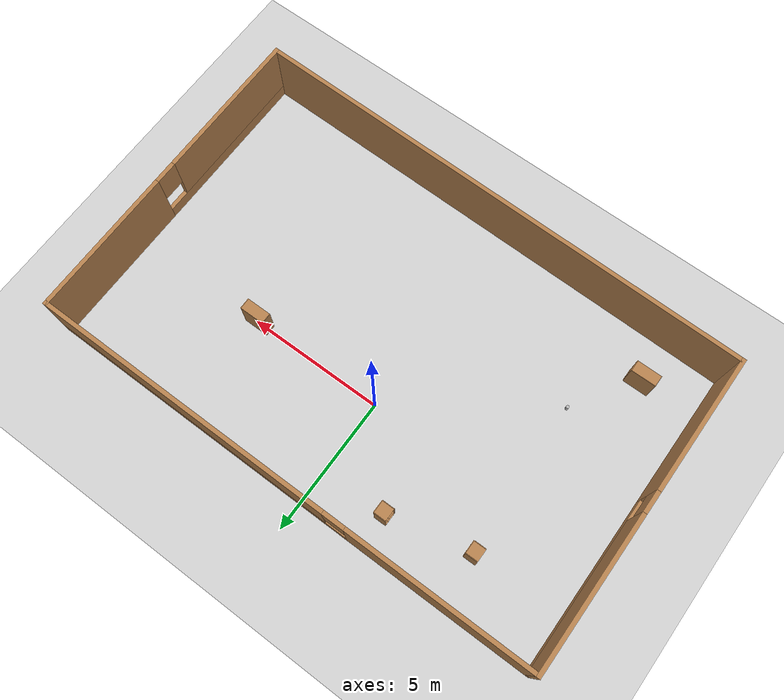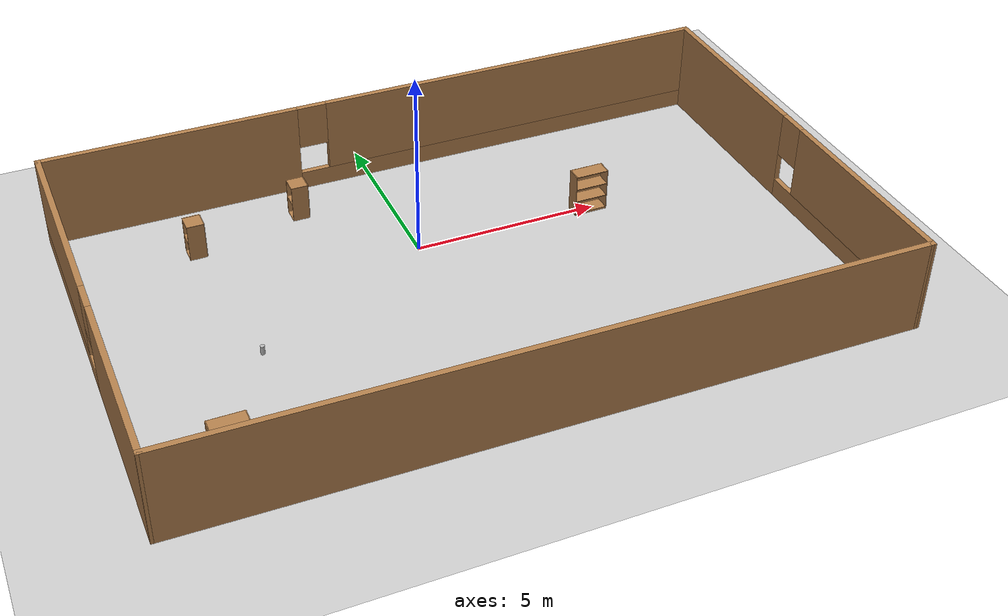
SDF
<sdf version="1.6">
 <world name="default">
  <model name="ground_plane">
   <static>1</static>
   <link name="link">
    <collision name="collision">
     <geometry><plane><normal>0 0 1</normal><size>100 100</size></plane></geometry>
     <surface>
      <contact><collide_bitmask>65535</collide_bitmask></contact>
      <friction><ode><mu>100</mu><mu2>50</mu2></ode></friction>
     </surface>
    </collision>
    <visual name="visual">
     <cast_shadows>0</cast_shadows>
     <geometry><plane><normal>0 0 1</normal><size>100 100</size></plane></geometry>
     <material>
      <script><uri>file://media/materials/scripts/gazebo.material</uri><name>Gazebo/Grey</name></script>
     </material>
    </visual>
   </link>
  </model>
  <model name="my_world">
   <pose>0.595102 -1.84985 0 0 -0 0</pose>
   <link name="Wall_1">
    <pose>-9.3 0.1255 0 0 -0 1.5708</pose>
    <visual name="Wall_1_Visual_0">
     <pose>-3.2222 0 1.25 0 -0 0</pose>
     <geometry><box><size>5.05559 0.15 2.5</size></box></geometry>
     <material>
      <script><uri>file://media/materials/scripts/gazebo.material</uri><name>Gazebo/Wood</name></script>
      <ambient>1 1 1 1</ambient>
     </material>
     <meta><layer>0</layer></meta>
    </visual>
    <collision name="Wall_1_Collision_0">
     <geometry><box><size>5.05559 0.15 2.5</size></box></geometry>
     <pose>-3.2222 0 1.25 0 -0 0</pose>
    </collision>
    <visual name="Wall_1_Visual_1">
     <pose>2.5278 0 0.25 0 -0 0</pose>
     <geometry><box><size>6.44441 0.15 0.5</size></box></geometry>
     <material>
      <script><uri>file://media/materials/scripts/gazebo.material</uri><name>Gazebo/Wood</name></script>
      <ambient>1 1 1 1</ambient>
     </material>
     <meta><layer>0</layer></meta>
    </visual>
    <collision name="Wall_1_Collision_1">
     <geometry><box><size>6.44441 0.15 0.5</size></box></geometry>
     <pose>2.5278 0 0.25 0 -0 0</pose>
    </collision>
    <visual name="Wall_1_Visual_2">
     <pose>2.9278 0 1.5 0 -0 0</pose>
     <geometry><box><size>5.64441 0.15 2</size></box></geometry>
     <material>
      <script><uri>file://media/materials/scripts/gazebo.material</uri><name>Gazebo/Wood</name></script>
      <ambient>1 1 1 1</ambient>
     </material>
     <meta><layer>0</layer></meta>
    </visual>
    <collision name="Wall_1_Collision_2">
     <geometry><box><size>5.64441 0.15 2</size></box></geometry>
     <pose>2.9278 0 1.5 0 -0 0</pose>
    </collision>
    <visual name="Wall_1_Visual_3">
     <pose>-0.294408 0 1.9 0 -0 0</pose>
     <geometry><box><size>0.8 0.15 1.2</size></box></geometry>
     <material>
      <script><uri>file://media/materials/scripts/gazebo.material</uri><name>Gazebo/Wood</name></script>
      <ambient>1 1 1 1</ambient>
     </material>
     <meta><layer>0</layer></meta>
    </visual>
    <collision name="Wall_1_Collision_3">
     <geometry><box><size>0.8 0.15 1.2</size></box></geometry>
     <pose>-0.294408 0 1.9 0 -0 0</pose>
    </collision>
   </link>
   <link name="Wall_2">
    <pose>0 5.8005 0 0 -0 0</pose>
    <visual name="Wall_2_Visual_0">
     <pose>-5.93695 0 1.25 0 -0 0</pose>
     <geometry><box><size>6.87609 0.15 2.5</size></box></geometry>
     <material>
      <script><uri>file://media/materials/scripts/gazebo.material</uri><name>Gazebo/Wood</name></script>
      <ambient>1 1 1 1</ambient>
     </material>
     <meta><layer>0</layer></meta>
    </visual>
    <collision name="Wall_2_Collision_0">
     <geometry><box><size>6.87609 0.15 2.5</size></box></geometry>
     <pose>-5.93695 0 1.25 0 -0 0</pose>
    </collision>
    <visual name="Wall_2_Visual_1">
     <pose>3.43805 0 0.25 0 -0 0</pose>
     <geometry><box><size>11.8739 0.15 0.5</size></box></geometry>
     <material>
      <script><uri>file://media/materials/scripts/gazebo.material</uri><name>Gazebo/Wood</name></script>
      <ambient>1 1 1 1</ambient>
     </material>
     <meta><layer>0</layer></meta>
    </visual>
    <collision name="Wall_2_Collision_1">
     <geometry><box><size>11.8739 0.15 0.5</size></box></geometry>
     <pose>3.43805 0 0.25 0 -0 0</pose>
    </collision>
    <visual name="Wall_2_Visual_2">
     <pose>3.83805 0 1.5 0 -0 0</pose>
     <geometry><box><size>11.0739 0.15 2</size></box></geometry>
     <material>
      <script><uri>file://media/materials/scripts/gazebo.material</uri><name>Gazebo/Wood</name></script>
      <ambient>1 1 1 1</ambient>
     </material>
     <meta><layer>0</layer></meta>
    </visual>
    <collision name="Wall_2_Collision_2">
     <geometry><box><size>11.0739 0.15 2</size></box></geometry>
     <pose>3.83805 0 1.5 0 -0 0</pose>
    </collision>
    <visual name="Wall_2_Visual_3">
     <pose>-2.09891 0 1.9 0 -0 0</pose>
     <geometry><box><size>0.8 0.15 1.2</size></box></geometry>
     <material>
      <script><uri>file://media/materials/scripts/gazebo.material</uri><name>Gazebo/Wood</name></script>
      <ambient>1 1 1 1</ambient>
     </material>
     <meta><layer>0</layer></meta>
    </visual>
    <collision name="Wall_2_Collision_3">
     <geometry><box><size>0.8 0.15 1.2</size></box></geometry>
     <pose>-2.09891 0 1.9 0 -0 0</pose>
    </collision>
   </link>
   <link name="Wall_3">
    <pose>9.3 0.0005 0 0 0 -1.5708</pose>
    <visual name="Wall_3_Visual_0">
     <pose>-3.17416 0 1.25 0 -0 0</pose>
     <geometry><box><size>5.40167 0.15 2.5</size></box></geometry>
     <material>
      <script><uri>file://media/materials/scripts/gazebo.material</uri><name>Gazebo/Wood</name></script>
      <ambient>1 1 1 1</ambient>
     </material>
     <meta><layer>0</layer></meta>
    </visual>
    <collision name="Wall_3_Collision_0">
     <geometry><box><size>5.40167 0.15 2.5</size></box></geometry>
     <pose>-3.17416 0 1.25 0 -0 0</pose>
    </collision>
    <visual name="Wall_3_Visual_1">
     <pose>2.70084 0 0.25 0 -0 0</pose>
     <geometry><box><size>6.34833 0.15 0.5</size></box></geometry>
     <material>
      <script><uri>file://media/materials/scripts/gazebo.material</uri><name>Gazebo/Wood</name></script>
      <ambient>1 1 1 1</ambient>
     </material>
     <meta><layer>0</layer></meta>
    </visual>
    <collision name="Wall_3_Collision_1">
     <geometry><box><size>6.34833 0.15 0.5</size></box></geometry>
     <pose>2.70084 0 0.25 0 -0 0</pose>
    </collision>
    <visual name="Wall_3_Visual_2">
     <pose>3.10084 0 1.5 0 -0 0</pose>
     <geometry><box><size>5.54833 0.15 2</size></box></geometry>
     <material>
      <script><uri>file://media/materials/scripts/gazebo.material</uri><name>Gazebo/Wood</name></script>
      <ambient>1 1 1 1</ambient>
     </material>
     <meta><layer>0</layer></meta>
    </visual>
    <collision name="Wall_3_Collision_2">
     <geometry><box><size>5.54833 0.15 2</size></box></geometry>
     <pose>3.10084 0 1.5 0 -0 0</pose>
    </collision>
    <visual name="Wall_3_Visual_3">
     <pose>-0.073326 0 1.9 0 -0 0</pose>
     <geometry><box><size>0.8 0.15 1.2</size></box></geometry>
     <material>
      <script><uri>file://media/materials/scripts/gazebo.material</uri><name>Gazebo/Wood</name></script>
      <ambient>1 1 1 1</ambient>
     </material>
     <meta><layer>0</layer></meta>
    </visual>
    <collision name="Wall_3_Collision_3">
     <geometry><box><size>0.8 0.15 1.2</size></box></geometry>
     <pose>-0.073326 0 1.9 0 -0 0</pose>
    </collision>
   </link>
   <link name="Wall_4">
    <collision name="Wall_4_Collision">
     <geometry><box><size>18.7517 0.15 2.5</size></box></geometry>
     <pose>0 0 1.25 0 -0 0</pose>
    </collision>
    <visual name="Wall_4_Visual">
     <pose>0 0 1.25 0 -0 0</pose>
     <geometry><box><size>18.7517 0.15 2.5</size></box></geometry>
     <material>
      <script><uri>file://media/materials/scripts/gazebo.material</uri><name>Gazebo/Wood</name></script>
      <ambient>1 1 1 1</ambient>
     </material>
     <meta><layer>0</layer></meta>
    </visual>
    <pose>0 -5.6745 0 0 -0 3.12815</pose>
   </link>
   <static>1</static>
  </model>
  <model name="cabinet">
   <static>1</static>
   <link name="cabinet_bottom_plate">
    <inertial>
     <pose>0 0 -1 0 -0 0</pose>
     <inertia><ixx>2.05</ixx><ixy>0</ixy><ixz>0</ixz><iyy>2.05</iyy><iyz>0</iyz><izz>2.05</izz></inertia>
     <mass>25</mass>
    </inertial>
    <collision name="cabinet_bottom_plate_geom">
     <pose>0 0 0.01 0 -0 0</pose>
     <geometry><box><size>0.45 0.45 0.02</size></box></geometry>
    </collision>
    <visual name="cabinet_bottom_plate_geom_visual">
     <pose>0 0 0.01 0 -0 0</pose>
     <geometry><box><size>0.45 0.45 0.02</size></box></geometry>
     <material>
      <script><uri>file://media/materials/scripts/gazebo.material</uri><name>Gazebo/Wood</name></script>
     </material>
    </visual>
    <collision name="cabinet_bottom_plate_geom_cabinet_back_plate">
     <pose>0.235 0 0.51 0 -0 0</pose>
     <geometry><box><size>0.02 0.45 1.02</size></box></geometry>
    </collision>
    <visual name="cabinet_bottom_plate_geom_cabinet_back_plate_visual">
     <pose>0.235 0 0.51 0 -0 0</pose>
     <geometry><box><size>0.02 0.45 1.02</size></box></geometry>
     <material>
      <script><uri>file://media/materials/scripts/gazebo.material</uri><name>Gazebo/Wood</name></script>
     </material>
    </visual>
    <collision name="cabinet_bottom_plate_geom_cabinet_left_plate">
     <pose>0 0.235 0.51 0 -0 0</pose>
     <geometry><box><size>0.45 0.02 1.02</size></box></geometry>
    </collision>
    <visual name="cabinet_bottom_plate_geom_cabinet_left_plate_visual">
     <pose>0 0.235 0.51 0 -0 0</pose>
     <geometry><box><size>0.45 0.02 1.02</size></box></geometry>
     <material>
      <script><uri>file://media/materials/scripts/gazebo.material</uri><name>Gazebo/Wood</name></script>
     </material>
    </visual>
    <collision name="cabinet_bottom_plate_geom_cabinet_middle_plate">
     <pose>0 0 0.51 0 -0 0</pose>
     <geometry><box><size>0.45 0.45 0.02</size></box></geometry>
    </collision>
    <visual name="cabinet_bottom_plate_geom_cabinet_middle_plate_visual">
     <pose>0 0 0.51 0 -0 0</pose>
     <geometry><box><size>0.45 0.45 0.02</size></box></geometry>
     <material>
      <script><uri>file://media/materials/scripts/gazebo.material</uri><name>Gazebo/Wood</name></script>
     </material>
    </visual>
    <collision name="cabinet_bottom_plate_geom_cabinet_right_plate">
     <pose>0 -0.235 0.51 0 -0 0</pose>
     <geometry><box><size>0.45 0.02 1.02</size></box></geometry>
    </collision>
    <visual name="cabinet_bottom_plate_geom_cabinet_right_plate_visual">
     <pose>0 -0.235 0.51 0 -0 0</pose>
     <geometry><box><size>0.45 0.02 1.02</size></box></geometry>
     <material>
      <script><uri>file://media/materials/scripts/gazebo.material</uri><name>Gazebo/Wood</name></script>
     </material>
    </visual>
    <collision name="cabinet_bottom_plate_geom_cabinet_top_plate">
     <pose>0 0 1.01 0 -0 0</pose>
     <geometry><box><size>0.45 0.45 0.02</size></box></geometry>
    </collision>
    <visual name="cabinet_bottom_plate_geom_cabinet_top_plate_visual">
     <pose>0 0 1.01 0 -0 0</pose>
     <geometry><box><size>0.45 0.45 0.02</size></box></geometry>
     <material>
      <script><uri>file://media/materials/scripts/gazebo.material</uri><name>Gazebo/Wood</name></script>
     </material>
    </visual>
   </link>
   <pose>-5.3729 2.01682 0 0 -0 0</pose>
  </model>
  <model name="bookshelf">
   <static>1</static>
   <link name="link">
    <inertial><mass>1</mass></inertial>
    <collision name="back">
     <pose>0 0.005 0.6 0 -0 0</pose>
     <geometry><box><size>0.9 0.01 1.2</size></box></geometry>
    </collision>
    <visual name="visual1">
     <pose>0 0.005 0.6 0 -0 0</pose>
     <geometry><box><size>0.9 0.01 1.2</size></box></geometry>
     <material>
      <script><uri>file://media/materials/scripts/gazebo.material</uri><name>Gazebo/Wood</name></script>
     </material>
    </visual>
    <collision name="left_side">
     <pose>0.45 -0.195 0.6 0 -0 0</pose>
     <geometry><box><size>0.02 0.4 1.2</size></box></geometry>
    </collision>
    <visual name="visual2">
     <pose>0.45 -0.195 0.6 0 -0 0</pose>
     <geometry><box><size>0.02 0.4 1.2</size></box></geometry>
     <material>
      <script><uri>file://media/materials/scripts/gazebo.material</uri><name>Gazebo/Wood</name></script>
     </material>
    </visual>
    <collision name="right_side">
     <pose>-0.45 -0.195 0.6 0 -0 0</pose>
     <geometry><box><size>0.02 0.4 1.2</size></box></geometry>
    </collision>
    <visual name="visual3">
     <pose>-0.45 -0.195 0.6 0 -0 0</pose>
     <geometry><box><size>0.02 0.4 1.2</size></box></geometry>
     <material>
      <script><uri>file://media/materials/scripts/gazebo.material</uri><name>Gazebo/Wood</name></script>
     </material>
    </visual>
    <collision name="bottom">
     <pose>0 -0.195 0.03 0 -0 0</pose>
     <geometry><box><size>0.88 0.4 0.06</size></box></geometry>
    </collision>
    <visual name="visual4">
     <pose>0 -0.195 0.03 0 -0 0</pose>
     <geometry><box><size>0.88 0.4 0.06</size></box></geometry>
     <material>
      <script><uri>file://media/materials/scripts/gazebo.material</uri><name>Gazebo/Wood</name></script>
     </material>
    </visual>
    <collision name="top">
     <pose>0 -0.195 1.19 0 -0 0</pose>
     <geometry><box><size>0.88 0.4 0.02</size></box></geometry>
    </collision>
    <visual name="visual5">
     <pose>0 -0.195 1.19 0 -0 0</pose>
     <geometry><box><size>0.88 0.4 0.02</size></box></geometry>
     <material>
      <script><uri>file://media/materials/scripts/gazebo.material</uri><name>Gazebo/Wood</name></script>
     </material>
    </visual>
    <collision name="low_shelf">
     <pose>0 -0.195 0.43 0 -0 0</pose>
     <geometry><box><size>0.88 0.4 0.02</size></box></geometry>
    </collision>
    <visual name="visual6">
     <pose>0 -0.195 0.43 0 -0 0</pose>
     <geometry><box><size>0.88 0.4 0.02</size></box></geometry>
     <material>
      <script><uri>file://media/materials/scripts/gazebo.material</uri><name>Gazebo/Wood</name></script>
     </material>
    </visual>
    <collision name="high_shelf">
     <pose>0 -0.195 0.8 0 -0 0</pose>
     <geometry><box><size>0.88 0.4 0.02</size></box></geometry>
    </collision>
    <visual name="visual7">
     <pose>0 -0.195 0.8 0 -0 0</pose>
     <geometry><box><size>0.88 0.4 0.02</size></box></geometry>
     <material>
      <script><uri>file://media/materials/scripts/gazebo.material</uri><name>Gazebo/Wood</name></script>
     </material>
    </visual>
   </link>
   <pose>-6.58321 -5.61236 0 0 -0 0</pose>
  </model>
  <model name="beer">
   <link name="link">
    <pose>0 0 0.115 0 -0 0</pose>
    <inertial>
     <mass>0.39</mass>
     <inertia><ixx>0.00058</ixx><ixy>0</ixy><ixz>0</ixz><iyy>0.00058</iyy><iyz>0</iyz><izz>0.00019</izz></inertia>
    </inertial>
    <collision name="collision">
     <geometry><cylinder><radius>0.055</radius><length>0.23</length></cylinder></geometry>
    </collision>
    <visual name="visual">
     <geometry><cylinder><radius>0.055</radius><length>0.23</length></cylinder></geometry>
     <material>
      <script>
       <uri>model://beer/materials/scripts</uri>
       <uri>model://beer/materials/textures</uri>
       <name>Beer/Diffuse</name>
      </script>
     </material>
    </visual>
   </link>
   <pose>-5.145 -3.43743 0.775001 -1e-06 2.6e-05 0.000204</pose>
  </model>
  <model name="cabinet_0">
   <static>1</static>
   <link name="cabinet_bottom_plate">
    <inertial>
     <pose>0 0 -1 0 -0 0</pose>
     <inertia><ixx>2.05</ixx><ixy>0</ixy><ixz>0</ixz><iyy>2.05</iyy><iyz>0</iyz><izz>2.05</izz></inertia>
     <mass>25</mass>
    </inertial>
    <collision name="cabinet_bottom_plate_geom">
     <pose>0 0 0.01 0 -0 0</pose>
     <geometry><box><size>0.45 0.45 0.02</size></box></geometry>
    </collision>
    <visual name="cabinet_bottom_plate_geom_visual">
     <pose>0 0 0.01 0 -0 0</pose>
     <geometry><box><size>0.45 0.45 0.02</size></box></geometry>
     <material>
      <script><uri>file://media/materials/scripts/gazebo.material</uri><name>Gazebo/Wood</name></script>
     </material>
    </visual>
    <collision name="cabinet_bottom_plate_geom_cabinet_back_plate">
     <pose>0.235 0 0.51 0 -0 0</pose>
     <geometry><box><size>0.02 0.45 1.02</size></box></geometry>
    </collision>
    <visual name="cabinet_bottom_plate_geom_cabinet_back_plate_visual">
     <pose>0.235 0 0.51 0 -0 0</pose>
     <geometry><box><size>0.02 0.45 1.02</size></box></geometry>
     <material>
      <script><uri>file://media/materials/scripts/gazebo.material</uri><name>Gazebo/Wood</name></script>
     </material>
    </visual>
    <collision name="cabinet_bottom_plate_geom_cabinet_left_plate">
     <pose>0 0.235 0.51 0 -0 0</pose>
     <geometry><box><size>0.45 0.02 1.02</size></box></geometry>
    </collision>
    <visual name="cabinet_bottom_plate_geom_cabinet_left_plate_visual">
     <pose>0 0.235 0.51 0 -0 0</pose>
     <geometry><box><size>0.45 0.02 1.02</size></box></geometry>
     <material>
      <script><uri>file://media/materials/scripts/gazebo.material</uri><name>Gazebo/Wood</name></script>
     </material>
    </visual>
    <collision name="cabinet_bottom_plate_geom_cabinet_middle_plate">
     <pose>0 0 0.51 0 -0 0</pose>
     <geometry><box><size>0.45 0.45 0.02</size></box></geometry>
    </collision>
    <visual name="cabinet_bottom_plate_geom_cabinet_middle_plate_visual">
     <pose>0 0 0.51 0 -0 0</pose>
     <geometry><box><size>0.45 0.45 0.02</size></box></geometry>
     <material>
      <script><uri>file://media/materials/scripts/gazebo.material</uri><name>Gazebo/Wood</name></script>
     </material>
    </visual>
    <collision name="cabinet_bottom_plate_geom_cabinet_right_plate">
     <pose>0 -0.235 0.51 0 -0 0</pose>
     <geometry><box><size>0.45 0.02 1.02</size></box></geometry>
    </collision>
    <visual name="cabinet_bottom_plate_geom_cabinet_right_plate_visual">
     <pose>0 -0.235 0.51 0 -0 0</pose>
     <geometry><box><size>0.45 0.02 1.02</size></box></geometry>
     <material>
      <script><uri>file://media/materials/scripts/gazebo.material</uri><name>Gazebo/Wood</name></script>
     </material>
    </visual>
    <collision name="cabinet_bottom_plate_geom_cabinet_top_plate">
     <pose>0 0 1.01 0 -0 0</pose>
     <geometry><box><size>0.45 0.45 0.02</size></box></geometry>
    </collision>
    <visual name="cabinet_bottom_plate_geom_cabinet_top_plate_visual">
     <pose>0 0 1.01 0 -0 0</pose>
     <geometry><box><size>0.45 0.45 0.02</size></box></geometry>
     <material>
      <script><uri>file://media/materials/scripts/gazebo.material</uri><name>Gazebo/Wood</name></script>
     </material>
    </visual>
   </link>
   <pose>-2.39597 2.69406 0 0 -0 0</pose>
  </model>
  <model name="bookshelf_0">
   <static>1</static>
   <link name="link">
    <inertial><mass>1</mass></inertial>
    <collision name="back">
     <pose>0 0.005 0.6 0 -0 0</pose>
     <geometry><box><size>0.9 0.01 1.2</size></box></geometry>
    </collision>
    <visual name="visual1">
     <pose>0 0.005 0.6 0 -0 0</pose>
     <geometry><box><size>0.9 0.01 1.2</size></box></geometry>
     <material>
      <script><uri>file://media/materials/scripts/gazebo.material</uri><name>Gazebo/Wood</name></script>
     </material>
    </visual>
    <collision name="left_side">
     <pose>0.45 -0.195 0.6 0 -0 0</pose>
     <geometry><box><size>0.02 0.4 1.2</size></box></geometry>
    </collision>
    <visual name="visual2">
     <pose>0.45 -0.195 0.6 0 -0 0</pose>
     <geometry><box><size>0.02 0.4 1.2</size></box></geometry>
     <material>
      <script><uri>file://media/materials/scripts/gazebo.material</uri><name>Gazebo/Wood</name></script>
     </material>
    </visual>
    <collision name="right_side">
     <pose>-0.45 -0.195 0.6 0 -0 0</pose>
     <geometry><box><size>0.02 0.4 1.2</size></box></geometry>
    </collision>
    <visual name="visual3">
     <pose>-0.45 -0.195 0.6 0 -0 0</pose>
     <geometry><box><size>0.02 0.4 1.2</size></box></geometry>
     <material>
      <script><uri>file://media/materials/scripts/gazebo.material</uri><name>Gazebo/Wood</name></script>
     </material>
    </visual>
    <collision name="bottom">
     <pose>0 -0.195 0.03 0 -0 0</pose>
     <geometry><box><size>0.88 0.4 0.06</size></box></geometry>
    </collision>
    <visual name="visual4">
     <pose>0 -0.195 0.03 0 -0 0</pose>
     <geometry><box><size>0.88 0.4 0.06</size></box></geometry>
     <material>
      <script><uri>file://media/materials/scripts/gazebo.material</uri><name>Gazebo/Wood</name></script>
     </material>
    </visual>
    <collision name="top">
     <pose>0 -0.195 1.19 0 -0 0</pose>
     <geometry><box><size>0.88 0.4 0.02</size></box></geometry>
    </collision>
    <visual name="visual5">
     <pose>0 -0.195 1.19 0 -0 0</pose>
     <geometry><box><size>0.88 0.4 0.02</size></box></geometry>
     <material>
      <script><uri>file://media/materials/scripts/gazebo.material</uri><name>Gazebo/Wood</name></script>
     </material>
    </visual>
    <collision name="low_shelf">
     <pose>0 -0.195 0.43 0 -0 0</pose>
     <geometry><box><size>0.88 0.4 0.02</size></box></geometry>
    </collision>
    <visual name="visual6">
     <pose>0 -0.195 0.43 0 -0 0</pose>
     <geometry><box><size>0.88 0.4 0.02</size></box></geometry>
     <material>
      <script><uri>file://media/materials/scripts/gazebo.material</uri><name>Gazebo/Wood</name></script>
     </material>
    </visual>
    <collision name="high_shelf">
     <pose>0 -0.195 0.8 0 -0 0</pose>
     <geometry><box><size>0.88 0.4 0.02</size></box></geometry>
    </collision>
    <visual name="visual7">
     <pose>0 -0.195 0.8 0 -0 0</pose>
     <geometry><box><size>0.88 0.4 0.02</size></box></geometry>
     <material>
      <script><uri>file://media/materials/scripts/gazebo.material</uri><name>Gazebo/Wood</name></script>
     </material>
    </visual>
   </link>
   <pose>4.87206 0.183108 0 0 -0 0</pose>
  </model>
 </world>
</sdf>
